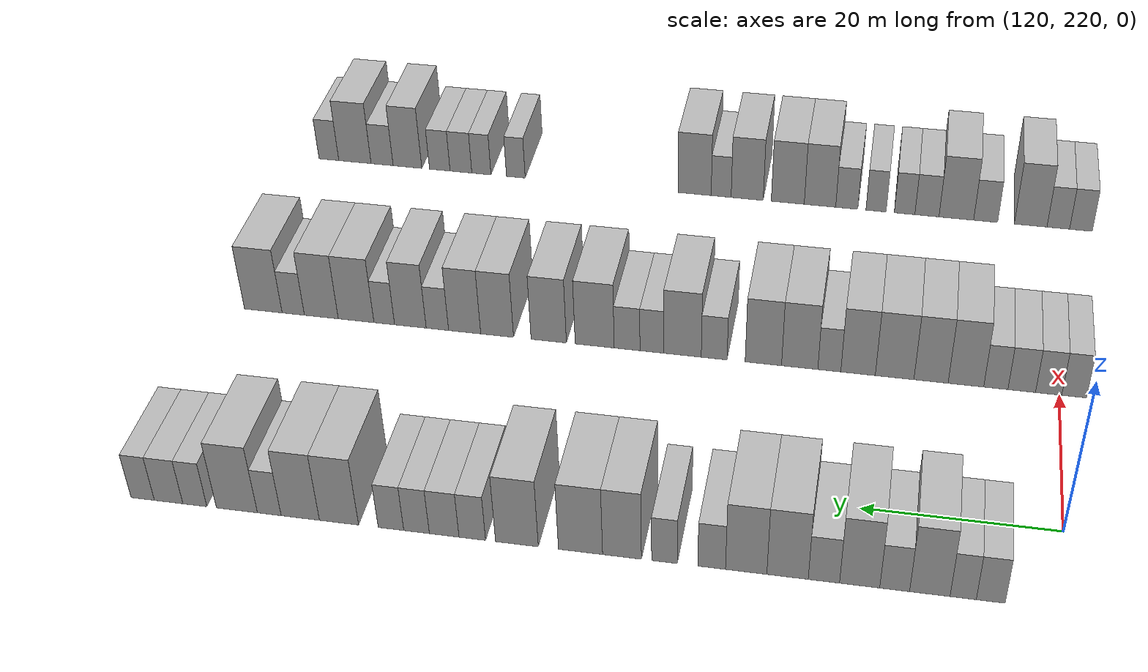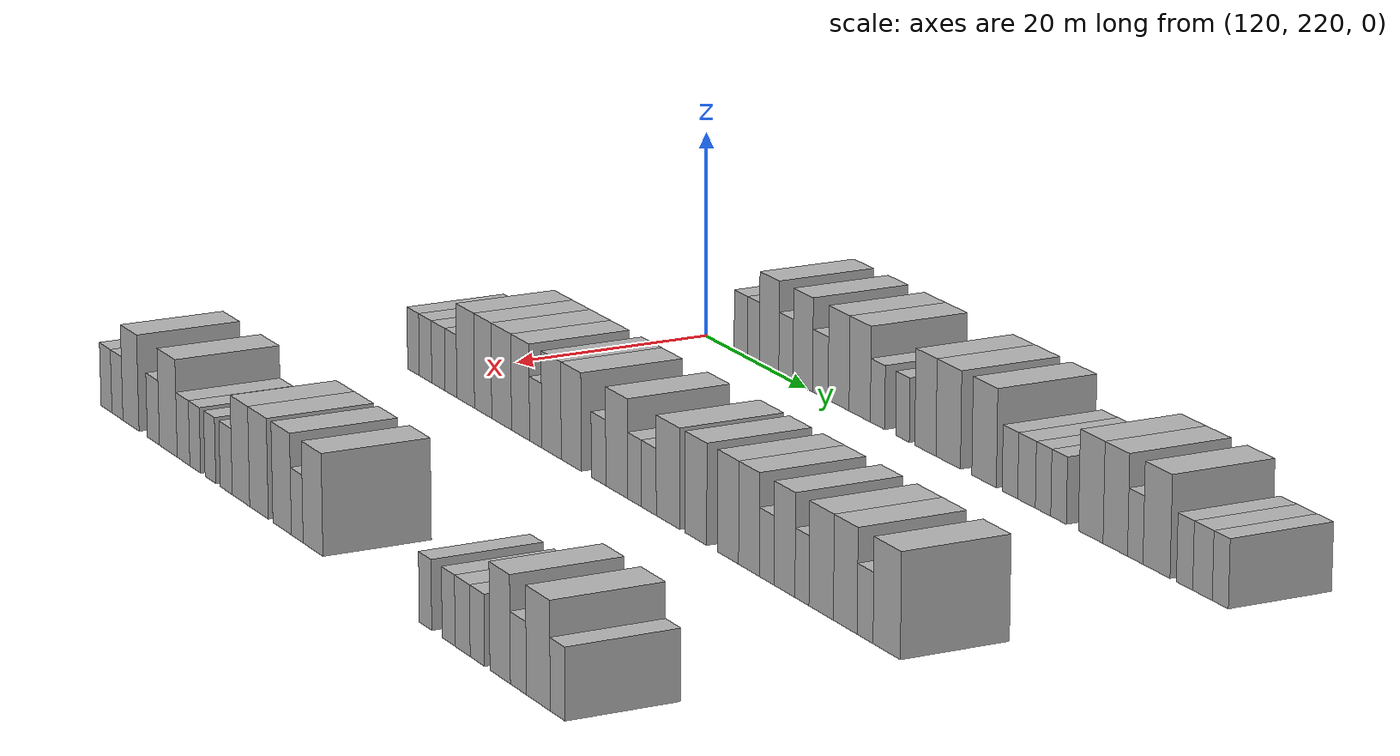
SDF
<sdf version="1.6">
 <world name="default">
  <model name="building_856">
   <static>1</static>
   <pose>115.0000 227.0291 0 0.000000 0.000000 0.000000</pose>
   <link name="link">
    <pose>0 0 3.00 0 0 0</pose>
    <collision name="collision"><geometry><box><size>10.0000 2.6956 6.0000</size></box></geometry></collision>
    <visual name="visual">
     <cast_shadows>0</cast_shadows>
     <geometry><box><size>10.0000 2.6956 6.0000</size></box></geometry>
     <material>
      <script>
       <uri>model://HANNAS_wall/materials/scripts</uri>
       <uri>model://HANNAS_wall/materials/textures</uri>
       <name>vrc/HANNAS_wall</name>
      </script>
     </material>
    </visual>
   </link>
  </model>
  <model name="building_857">
   <static>1</static>
   <pose>115.0000 229.6033 0 0.000000 0.000000 0.000000</pose>
   <link name="link">
    <pose>0 0 3.00 0 0 0</pose>
    <collision name="collision"><geometry><box><size>10.0000 2.4527 6.0000</size></box></geometry></collision>
    <visual name="visual">
     <cast_shadows>0</cast_shadows>
     <geometry><box><size>10.0000 2.4527 6.0000</size></box></geometry>
     <material>
      <script>
       <uri>model://HANNAS_wall/materials/scripts</uri>
       <uri>model://HANNAS_wall/materials/textures</uri>
       <name>vrc/HANNAS_wall</name>
      </script>
     </material>
    </visual>
   </link>
  </model>
  <model name="building_858">
   <static>1</static>
   <pose>115.0000 232.7340 0 0.000000 0.000000 0.000000</pose>
   <link name="link">
    <pose>0 0 4.50 0 0 0</pose>
    <collision name="collision"><geometry><box><size>10.0000 3.8087 9.0000</size></box></geometry></collision>
    <visual name="visual">
     <cast_shadows>0</cast_shadows>
     <geometry><box><size>10.0000 3.8087 9.0000</size></box></geometry>
     <material>
      <script>
       <uri>model://HANNAS_wall/materials/scripts</uri>
       <uri>model://HANNAS_wall/materials/textures</uri>
       <name>vrc/HANNAS_wall</name>
      </script>
     </material>
    </visual>
   </link>
  </model>
  <model name="building_859">
   <static>1</static>
   <pose>115.0000 236.0502 0 0.000000 0.000000 0.000000</pose>
   <link name="link">
    <pose>0 0 3.00 0 0 0</pose>
    <collision name="collision"><geometry><box><size>10.0000 2.8237 6.0000</size></box></geometry></collision>
    <visual name="visual">
     <cast_shadows>0</cast_shadows>
     <geometry><box><size>10.0000 2.8237 6.0000</size></box></geometry>
     <material>
      <script>
       <uri>model://HANNAS_wall/materials/scripts</uri>
       <uri>model://HANNAS_wall/materials/textures</uri>
       <name>vrc/HANNAS_wall</name>
      </script>
     </material>
    </visual>
   </link>
  </model>
  <model name="building_860">
   <static>1</static>
   <pose>115.0000 239.3705 0 0.000000 0.000000 0.000000</pose>
   <link name="link">
    <pose>0 0 4.50 0 0 0</pose>
    <collision name="collision"><geometry><box><size>10.0000 3.8169 9.0000</size></box></geometry></collision>
    <visual name="visual">
     <cast_shadows>0</cast_shadows>
     <geometry><box><size>10.0000 3.8169 9.0000</size></box></geometry>
     <material>
      <script>
       <uri>model://HANNAS_wall/materials/scripts</uri>
       <uri>model://HANNAS_wall/materials/textures</uri>
       <name>vrc/HANNAS_wall</name>
      </script>
     </material>
    </visual>
   </link>
  </model>
  <model name="building_861">
   <static>1</static>
   <pose>115.0000 242.7747 0 0.000000 0.000000 0.000000</pose>
   <link name="link">
    <pose>0 0 3.00 0 0 0</pose>
    <collision name="collision"><geometry><box><size>10.0000 2.9914 6.0000</size></box></geometry></collision>
    <visual name="visual">
     <cast_shadows>0</cast_shadows>
     <geometry><box><size>10.0000 2.9914 6.0000</size></box></geometry>
     <material>
      <script>
       <uri>model://HANNAS_wall/materials/scripts</uri>
       <uri>model://HANNAS_wall/materials/textures</uri>
       <name>vrc/HANNAS_wall</name>
      </script>
     </material>
    </visual>
   </link>
  </model>
  <model name="building_862">
   <static>1</static>
   <pose>115.0000 246.2562 0 0.000000 0.000000 0.000000</pose>
   <link name="link">
    <pose>0 0 4.50 0 0 0</pose>
    <collision name="collision"><geometry><box><size>10.0000 3.9718 9.0000</size></box></geometry></collision>
    <visual name="visual">
     <cast_shadows>0</cast_shadows>
     <geometry><box><size>10.0000 3.9718 9.0000</size></box></geometry>
     <material>
      <script>
       <uri>model://HANNAS_wall/materials/scripts</uri>
       <uri>model://HANNAS_wall/materials/textures</uri>
       <name>vrc/HANNAS_wall</name>
      </script>
     </material>
    </visual>
   </link>
  </model>
  <model name="building_863">
   <static>1</static>
   <pose>115.0000 250.2392 0 0.000000 0.000000 0.000000</pose>
   <link name="link">
    <pose>0 0 4.50 0 0 0</pose>
    <collision name="collision"><geometry><box><size>10.0000 3.9940 9.0000</size></box></geometry></collision>
    <visual name="visual">
     <cast_shadows>0</cast_shadows>
     <geometry><box><size>10.0000 3.9940 9.0000</size></box></geometry>
     <material>
      <script>
       <uri>model://HANNAS_wall/materials/scripts</uri>
       <uri>model://HANNAS_wall/materials/textures</uri>
       <name>vrc/HANNAS_wall</name>
      </script>
     </material>
    </visual>
   </link>
  </model>
  <model name="building_864">
   <static>1</static>
   <pose>115.0000 253.5771 0 0.000000 0.000000 0.000000</pose>
   <link name="link">
    <pose>0 0 3.00 0 0 0</pose>
    <collision name="collision"><geometry><box><size>10.0000 2.6818 6.0000</size></box></geometry></collision>
    <visual name="visual">
     <cast_shadows>0</cast_shadows>
     <geometry><box><size>10.0000 2.6818 6.0000</size></box></geometry>
     <material>
      <script>
       <uri>model://HANNAS_wall/materials/scripts</uri>
       <uri>model://HANNAS_wall/materials/textures</uri>
       <name>vrc/HANNAS_wall</name>
      </script>
     </material>
    </visual>
   </link>
  </model>
  <model name="building_865">
   <static>1</static>
   <pose>115.0000 258.1715 0 0.000000 0.000000 0.000000</pose>
   <link name="link">
    <pose>0 0 3.00 0 0 0</pose>
    <collision name="collision"><geometry><box><size>10.0000 2.5071 6.0000</size></box></geometry></collision>
    <visual name="visual">
     <cast_shadows>0</cast_shadows>
     <geometry><box><size>10.0000 2.5071 6.0000</size></box></geometry>
     <material>
      <script>
       <uri>model://HANNAS_wall/materials/scripts</uri>
       <uri>model://HANNAS_wall/materials/textures</uri>
       <name>vrc/HANNAS_wall</name>
      </script>
     </material>
    </visual>
   </link>
  </model>
  <model name="building_866">
   <static>1</static>
   <pose>115.0000 262.3333 0 0.000000 0.000000 0.000000</pose>
   <link name="link">
    <pose>0 0 4.50 0 0 0</pose>
    <collision name="collision"><geometry><box><size>10.0000 3.8165 9.0000</size></box></geometry></collision>
    <visual name="visual">
     <cast_shadows>0</cast_shadows>
     <geometry><box><size>10.0000 3.8165 9.0000</size></box></geometry>
     <material>
      <script>
       <uri>model://HANNAS_wall/materials/scripts</uri>
       <uri>model://HANNAS_wall/materials/textures</uri>
       <name>vrc/HANNAS_wall</name>
      </script>
     </material>
    </visual>
   </link>
  </model>
  <model name="building_867">
   <static>1</static>
   <pose>115.0000 266.4249 0 0.000000 0.000000 0.000000</pose>
   <link name="link">
    <pose>0 0 4.50 0 0 0</pose>
    <collision name="collision"><geometry><box><size>10.0000 4.3666 9.0000</size></box></geometry></collision>
    <visual name="visual">
     <cast_shadows>0</cast_shadows>
     <geometry><box><size>10.0000 4.3666 9.0000</size></box></geometry>
     <material>
      <script>
       <uri>model://HANNAS_wall/materials/scripts</uri>
       <uri>model://HANNAS_wall/materials/textures</uri>
       <name>vrc/HANNAS_wall</name>
      </script>
     </material>
    </visual>
   </link>
  </model>
  <model name="building_868">
   <static>1</static>
   <pose>115.0000 272.7425 0 0.000000 0.000000 0.000000</pose>
   <link name="link">
    <pose>0 0 4.50 0 0 0</pose>
    <collision name="collision"><geometry><box><size>10.0000 4.2687 9.0000</size></box></geometry></collision>
    <visual name="visual">
     <cast_shadows>0</cast_shadows>
     <geometry><box><size>10.0000 4.2687 9.0000</size></box></geometry>
     <material>
      <script>
       <uri>model://HANNAS_wall/materials/scripts</uri>
       <uri>model://HANNAS_wall/materials/textures</uri>
       <name>vrc/HANNAS_wall</name>
      </script>
     </material>
    </visual>
   </link>
  </model>
  <model name="building_869">
   <static>1</static>
   <pose>115.0000 277.2118 0 0.000000 0.000000 0.000000</pose>
   <link name="link">
    <pose>0 0 3.00 0 0 0</pose>
    <collision name="collision"><geometry><box><size>10.0000 2.6699 6.0000</size></box></geometry></collision>
    <visual name="visual">
     <cast_shadows>0</cast_shadows>
     <geometry><box><size>10.0000 2.6699 6.0000</size></box></geometry>
     <material>
      <script>
       <uri>model://HANNAS_wall/materials/scripts</uri>
       <uri>model://HANNAS_wall/materials/textures</uri>
       <name>vrc/HANNAS_wall</name>
      </script>
     </material>
    </visual>
   </link>
  </model>
  <model name="building_870">
   <static>1</static>
   <pose>115.0000 280.0429 0 0.000000 0.000000 0.000000</pose>
   <link name="link">
    <pose>0 0 3.00 0 0 0</pose>
    <collision name="collision"><geometry><box><size>10.0000 2.9924 6.0000</size></box></geometry></collision>
    <visual name="visual">
     <cast_shadows>0</cast_shadows>
     <geometry><box><size>10.0000 2.9924 6.0000</size></box></geometry>
     <material>
      <script>
       <uri>model://HANNAS_wall/materials/scripts</uri>
       <uri>model://HANNAS_wall/materials/textures</uri>
       <name>vrc/HANNAS_wall</name>
      </script>
     </material>
    </visual>
   </link>
  </model>
  <model name="building_871">
   <static>1</static>
   <pose>115.0000 282.8350 0 0.000000 0.000000 0.000000</pose>
   <link name="link">
    <pose>0 0 3.00 0 0 0</pose>
    <collision name="collision"><geometry><box><size>10.0000 2.5917 6.0000</size></box></geometry></collision>
    <visual name="visual">
     <cast_shadows>0</cast_shadows>
     <geometry><box><size>10.0000 2.5917 6.0000</size></box></geometry>
     <material>
      <script>
       <uri>model://HANNAS_wall/materials/scripts</uri>
       <uri>model://HANNAS_wall/materials/textures</uri>
       <name>vrc/HANNAS_wall</name>
      </script>
     </material>
    </visual>
   </link>
  </model>
  <model name="building_872">
   <static>1</static>
   <pose>115.0000 285.4289 0 0.000000 0.000000 0.000000</pose>
   <link name="link">
    <pose>0 0 3.00 0 0 0</pose>
    <collision name="collision"><geometry><box><size>10.0000 2.5960 6.0000</size></box></geometry></collision>
    <visual name="visual">
     <cast_shadows>0</cast_shadows>
     <geometry><box><size>10.0000 2.5960 6.0000</size></box></geometry>
     <material>
      <script>
       <uri>model://HANNAS_wall/materials/scripts</uri>
       <uri>model://HANNAS_wall/materials/textures</uri>
       <name>vrc/HANNAS_wall</name>
      </script>
     </material>
    </visual>
   </link>
  </model>
  <model name="building_873">
   <static>1</static>
   <pose>115.0000 290.7382 0 0.000000 0.000000 0.000000</pose>
   <link name="link">
    <pose>0 0 4.50 0 0 0</pose>
    <collision name="collision"><geometry><box><size>10.0000 4.0227 9.0000</size></box></geometry></collision>
    <visual name="visual">
     <cast_shadows>0</cast_shadows>
     <geometry><box><size>10.0000 4.0227 9.0000</size></box></geometry>
     <material>
      <script>
       <uri>model://HANNAS_wall/materials/scripts</uri>
       <uri>model://HANNAS_wall/materials/textures</uri>
       <name>vrc/HANNAS_wall</name>
      </script>
     </material>
    </visual>
   </link>
  </model>
  <model name="building_874">
   <static>1</static>
   <pose>115.0000 294.7221 0 0.000000 0.000000 0.000000</pose>
   <link name="link">
    <pose>0 0 4.50 0 0 0</pose>
    <collision name="collision"><geometry><box><size>10.0000 3.9450 9.0000</size></box></geometry></collision>
    <visual name="visual">
     <cast_shadows>0</cast_shadows>
     <geometry><box><size>10.0000 3.9450 9.0000</size></box></geometry>
     <material>
      <script>
       <uri>model://HANNAS_wall/materials/scripts</uri>
       <uri>model://HANNAS_wall/materials/textures</uri>
       <name>vrc/HANNAS_wall</name>
      </script>
     </material>
    </visual>
   </link>
  </model>
  <model name="building_875">
   <static>1</static>
   <pose>115.0000 297.9232 0 0.000000 0.000000 0.000000</pose>
   <link name="link">
    <pose>0 0 3.00 0 0 0</pose>
    <collision name="collision"><geometry><box><size>10.0000 2.4573 6.0000</size></box></geometry></collision>
    <visual name="visual">
     <cast_shadows>0</cast_shadows>
     <geometry><box><size>10.0000 2.4573 6.0000</size></box></geometry>
     <material>
      <script>
       <uri>model://HANNAS_wall/materials/scripts</uri>
       <uri>model://HANNAS_wall/materials/textures</uri>
       <name>vrc/HANNAS_wall</name>
      </script>
     </material>
    </visual>
   </link>
  </model>
  <model name="building_876">
   <static>1</static>
   <pose>115.0000 301.2846 0 0.000000 0.000000 0.000000</pose>
   <link name="link">
    <pose>0 0 4.50 0 0 0</pose>
    <collision name="collision"><geometry><box><size>10.0000 4.2655 9.0000</size></box></geometry></collision>
    <visual name="visual">
     <cast_shadows>0</cast_shadows>
     <geometry><box><size>10.0000 4.2655 9.0000</size></box></geometry>
     <material>
      <script>
       <uri>model://HANNAS_wall/materials/scripts</uri>
       <uri>model://HANNAS_wall/materials/textures</uri>
       <name>vrc/HANNAS_wall</name>
      </script>
     </material>
    </visual>
   </link>
  </model>
  <model name="building_877">
   <static>1</static>
   <pose>115.0000 305.6747 0 0.000000 0.000000 0.000000</pose>
   <link name="link">
    <pose>0 0 3.00 0 0 0</pose>
    <collision name="collision"><geometry><box><size>10.0000 2.5145 6.0000</size></box></geometry></collision>
    <visual name="visual">
     <cast_shadows>0</cast_shadows>
     <geometry><box><size>10.0000 2.5145 6.0000</size></box></geometry>
     <material>
      <script>
       <uri>model://HANNAS_wall/materials/scripts</uri>
       <uri>model://HANNAS_wall/materials/textures</uri>
       <name>vrc/HANNAS_wall</name>
      </script>
     </material>
    </visual>
   </link>
  </model>
  <model name="building_878">
   <static>1</static>
   <pose>115.0000 308.4294 0 0.000000 0.000000 0.000000</pose>
   <link name="link">
    <pose>0 0 3.00 0 0 0</pose>
    <collision name="collision"><geometry><box><size>10.0000 2.9950 6.0000</size></box></geometry></collision>
    <visual name="visual">
     <cast_shadows>0</cast_shadows>
     <geometry><box><size>10.0000 2.9950 6.0000</size></box></geometry>
     <material>
      <script>
       <uri>model://HANNAS_wall/materials/scripts</uri>
       <uri>model://HANNAS_wall/materials/textures</uri>
       <name>vrc/HANNAS_wall</name>
      </script>
     </material>
    </visual>
   </link>
  </model>
  <model name="building_879">
   <static>1</static>
   <pose>115.0000 311.1536 0 0.000000 0.000000 0.000000</pose>
   <link name="link">
    <pose>0 0 3.00 0 0 0</pose>
    <collision name="collision"><geometry><box><size>10.0000 2.4533 6.0000</size></box></geometry></collision>
    <visual name="visual">
     <cast_shadows>0</cast_shadows>
     <geometry><box><size>10.0000 2.4533 6.0000</size></box></geometry>
     <material>
      <script>
       <uri>model://HANNAS_wall/materials/scripts</uri>
       <uri>model://HANNAS_wall/materials/textures</uri>
       <name>vrc/HANNAS_wall</name>
      </script>
     </material>
    </visual>
   </link>
  </model>
  <model name="building_1085">
   <static>1</static>
   <pose>145.0000 218.4726 0 0.000000 0.000000 0.000000</pose>
   <link name="link">
    <pose>0 0 3.00 0 0 0</pose>
    <collision name="collision"><geometry><box><size>10.0000 2.6094 6.0000</size></box></geometry></collision>
    <visual name="visual">
     <cast_shadows>0</cast_shadows>
     <geometry><box><size>10.0000 2.6094 6.0000</size></box></geometry>
     <material>
      <script>
       <uri>model://HANNAS_wall/materials/scripts</uri>
       <uri>model://HANNAS_wall/materials/textures</uri>
       <name>vrc/HANNAS_wall</name>
      </script>
     </material>
    </visual>
   </link>
  </model>
  <model name="building_1086">
   <static>1</static>
   <pose>145.0000 221.1645 0 0.000000 0.000000 0.000000</pose>
   <link name="link">
    <pose>0 0 3.00 0 0 0</pose>
    <collision name="collision"><geometry><box><size>10.0000 2.7745 6.0000</size></box></geometry></collision>
    <visual name="visual">
     <cast_shadows>0</cast_shadows>
     <geometry><box><size>10.0000 2.7745 6.0000</size></box></geometry>
     <material>
      <script>
       <uri>model://HANNAS_wall/materials/scripts</uri>
       <uri>model://HANNAS_wall/materials/textures</uri>
       <name>vrc/HANNAS_wall</name>
      </script>
     </material>
    </visual>
   </link>
  </model>
  <model name="building_1087">
   <static>1</static>
   <pose>145.0000 224.0171 0 0.000000 0.000000 0.000000</pose>
   <link name="link">
    <pose>0 0 3.00 0 0 0</pose>
    <collision name="collision"><geometry><box><size>10.0000 2.9308 6.0000</size></box></geometry></collision>
    <visual name="visual">
     <cast_shadows>0</cast_shadows>
     <geometry><box><size>10.0000 2.9308 6.0000</size></box></geometry>
     <material>
      <script>
       <uri>model://HANNAS_wall/materials/scripts</uri>
       <uri>model://HANNAS_wall/materials/textures</uri>
       <name>vrc/HANNAS_wall</name>
      </script>
     </material>
    </visual>
   </link>
  </model>
  <model name="building_1088">
   <static>1</static>
   <pose>145.0000 226.7716 0 0.000000 0.000000 0.000000</pose>
   <link name="link">
    <pose>0 0 3.00 0 0 0</pose>
    <collision name="collision"><geometry><box><size>10.0000 2.5783 6.0000</size></box></geometry></collision>
    <visual name="visual">
     <cast_shadows>0</cast_shadows>
     <geometry><box><size>10.0000 2.5783 6.0000</size></box></geometry>
     <material>
      <script>
       <uri>model://HANNAS_wall/materials/scripts</uri>
       <uri>model://HANNAS_wall/materials/textures</uri>
       <name>vrc/HANNAS_wall</name>
      </script>
     </material>
    </visual>
   </link>
  </model>
  <model name="building_1089">
   <static>1</static>
   <pose>145.0000 229.9659 0 0.000000 0.000000 0.000000</pose>
   <link name="link">
    <pose>0 0 4.50 0 0 0</pose>
    <collision name="collision"><geometry><box><size>10.0000 3.8103 9.0000</size></box></geometry></collision>
    <visual name="visual">
     <cast_shadows>0</cast_shadows>
     <geometry><box><size>10.0000 3.8103 9.0000</size></box></geometry>
     <material>
      <script>
       <uri>model://HANNAS_wall/materials/scripts</uri>
       <uri>model://HANNAS_wall/materials/textures</uri>
       <name>vrc/HANNAS_wall</name>
      </script>
     </material>
    </visual>
   </link>
  </model>
  <model name="building_1090">
   <static>1</static>
   <pose>145.0000 233.7099 0 0.000000 0.000000 0.000000</pose>
   <link name="link">
    <pose>0 0 4.50 0 0 0</pose>
    <collision name="collision"><geometry><box><size>10.0000 3.6778 9.0000</size></box></geometry></collision>
    <visual name="visual">
     <cast_shadows>0</cast_shadows>
     <geometry><box><size>10.0000 3.6778 9.0000</size></box></geometry>
     <material>
      <script>
       <uri>model://HANNAS_wall/materials/scripts</uri>
       <uri>model://HANNAS_wall/materials/textures</uri>
       <name>vrc/HANNAS_wall</name>
      </script>
     </material>
    </visual>
   </link>
  </model>
  <model name="building_1091">
   <static>1</static>
   <pose>145.0000 237.6364 0 0.000000 0.000000 0.000000</pose>
   <link name="link">
    <pose>0 0 4.50 0 0 0</pose>
    <collision name="collision"><geometry><box><size>10.0000 4.1751 9.0000</size></box></geometry></collision>
    <visual name="visual">
     <cast_shadows>0</cast_shadows>
     <geometry><box><size>10.0000 4.1751 9.0000</size></box></geometry>
     <material>
      <script>
       <uri>model://HANNAS_wall/materials/scripts</uri>
       <uri>model://HANNAS_wall/materials/textures</uri>
       <name>vrc/HANNAS_wall</name>
      </script>
     </material>
    </visual>
   </link>
  </model>
  <model name="building_1092">
   <static>1</static>
   <pose>145.0000 241.5987 0 0.000000 0.000000 0.000000</pose>
   <link name="link">
    <pose>0 0 4.50 0 0 0</pose>
    <collision name="collision"><geometry><box><size>10.0000 3.7496 9.0000</size></box></geometry></collision>
    <visual name="visual">
     <cast_shadows>0</cast_shadows>
     <geometry><box><size>10.0000 3.7496 9.0000</size></box></geometry>
     <material>
      <script>
       <uri>model://HANNAS_wall/materials/scripts</uri>
       <uri>model://HANNAS_wall/materials/textures</uri>
       <name>vrc/HANNAS_wall</name>
      </script>
     </material>
    </visual>
   </link>
  </model>
  <model name="building_1093">
   <static>1</static>
   <pose>145.0000 244.7270 0 0.000000 0.000000 0.000000</pose>
   <link name="link">
    <pose>0 0 3.00 0 0 0</pose>
    <collision name="collision"><geometry><box><size>10.0000 2.5070 6.0000</size></box></geometry></collision>
    <visual name="visual">
     <cast_shadows>0</cast_shadows>
     <geometry><box><size>10.0000 2.5070 6.0000</size></box></geometry>
     <material>
      <script>
       <uri>model://HANNAS_wall/materials/scripts</uri>
       <uri>model://HANNAS_wall/materials/textures</uri>
       <name>vrc/HANNAS_wall</name>
      </script>
     </material>
    </visual>
   </link>
  </model>
  <model name="building_1094">
   <static>1</static>
   <pose>145.0000 247.9673 0 0.000000 0.000000 0.000000</pose>
   <link name="link">
    <pose>0 0 4.50 0 0 0</pose>
    <collision name="collision"><geometry><box><size>10.0000 3.9736 9.0000</size></box></geometry></collision>
    <visual name="visual">
     <cast_shadows>0</cast_shadows>
     <geometry><box><size>10.0000 3.9736 9.0000</size></box></geometry>
     <material>
      <script>
       <uri>model://HANNAS_wall/materials/scripts</uri>
       <uri>model://HANNAS_wall/materials/textures</uri>
       <name>vrc/HANNAS_wall</name>
      </script>
     </material>
    </visual>
   </link>
  </model>
  <model name="building_1095">
   <static>1</static>
   <pose>145.0000 251.9594 0 0.000000 0.000000 0.000000</pose>
   <link name="link">
    <pose>0 0 4.50 0 0 0</pose>
    <collision name="collision"><geometry><box><size>10.0000 4.0106 9.0000</size></box></geometry></collision>
    <visual name="visual">
     <cast_shadows>0</cast_shadows>
     <geometry><box><size>10.0000 4.0106 9.0000</size></box></geometry>
     <material>
      <script>
       <uri>model://HANNAS_wall/materials/scripts</uri>
       <uri>model://HANNAS_wall/materials/textures</uri>
       <name>vrc/HANNAS_wall</name>
      </script>
     </material>
    </visual>
   </link>
  </model>
  <model name="building_1096">
   <static>1</static>
   <pose>145.0000 257.3960 0 0.000000 0.000000 0.000000</pose>
   <link name="link">
    <pose>0 0 3.00 0 0 0</pose>
    <collision name="collision"><geometry><box><size>10.0000 2.8628 6.0000</size></box></geometry></collision>
    <visual name="visual">
     <cast_shadows>0</cast_shadows>
     <geometry><box><size>10.0000 2.8628 6.0000</size></box></geometry>
     <material>
      <script>
       <uri>model://HANNAS_wall/materials/scripts</uri>
       <uri>model://HANNAS_wall/materials/textures</uri>
       <name>vrc/HANNAS_wall</name>
      </script>
     </material>
    </visual>
   </link>
  </model>
  <model name="building_1097">
   <static>1</static>
   <pose>145.0000 260.9255 0 0.000000 0.000000 0.000000</pose>
   <link name="link">
    <pose>0 0 4.50 0 0 0</pose>
    <collision name="collision"><geometry><box><size>10.0000 4.1962 9.0000</size></box></geometry></collision>
    <visual name="visual">
     <cast_shadows>0</cast_shadows>
     <geometry><box><size>10.0000 4.1962 9.0000</size></box></geometry>
     <material>
      <script>
       <uri>model://HANNAS_wall/materials/scripts</uri>
       <uri>model://HANNAS_wall/materials/textures</uri>
       <name>vrc/HANNAS_wall</name>
      </script>
     </material>
    </visual>
   </link>
  </model>
  <model name="building_1098">
   <static>1</static>
   <pose>145.0000 264.3428 0 0.000000 0.000000 0.000000</pose>
   <link name="link">
    <pose>0 0 3.00 0 0 0</pose>
    <collision name="collision"><geometry><box><size>10.0000 2.6382 6.0000</size></box></geometry></collision>
    <visual name="visual">
     <cast_shadows>0</cast_shadows>
     <geometry><box><size>10.0000 2.6382 6.0000</size></box></geometry>
     <material>
      <script>
       <uri>model://HANNAS_wall/materials/scripts</uri>
       <uri>model://HANNAS_wall/materials/textures</uri>
       <name>vrc/HANNAS_wall</name>
      </script>
     </material>
    </visual>
   </link>
  </model>
  <model name="building_1099">
   <static>1</static>
   <pose>145.0000 267.1093 0 0.000000 0.000000 0.000000</pose>
   <link name="link">
    <pose>0 0 3.00 0 0 0</pose>
    <collision name="collision"><geometry><box><size>10.0000 2.8949 6.0000</size></box></geometry></collision>
    <visual name="visual">
     <cast_shadows>0</cast_shadows>
     <geometry><box><size>10.0000 2.8949 6.0000</size></box></geometry>
     <material>
      <script>
       <uri>model://HANNAS_wall/materials/scripts</uri>
       <uri>model://HANNAS_wall/materials/textures</uri>
       <name>vrc/HANNAS_wall</name>
      </script>
     </material>
    </visual>
   </link>
  </model>
  <model name="building_1100">
   <static>1</static>
   <pose>145.0000 270.7602 0 0.000000 0.000000 0.000000</pose>
   <link name="link">
    <pose>0 0 4.50 0 0 0</pose>
    <collision name="collision"><geometry><box><size>10.0000 4.4069 9.0000</size></box></geometry></collision>
    <visual name="visual">
     <cast_shadows>0</cast_shadows>
     <geometry><box><size>10.0000 4.4069 9.0000</size></box></geometry>
     <material>
      <script>
       <uri>model://HANNAS_wall/materials/scripts</uri>
       <uri>model://HANNAS_wall/materials/textures</uri>
       <name>vrc/HANNAS_wall</name>
      </script>
     </material>
    </visual>
   </link>
  </model>
  <model name="building_1101">
   <static>1</static>
   <pose>145.0000 275.9686 0 0.000000 0.000000 0.000000</pose>
   <link name="link">
    <pose>0 0 4.50 0 0 0</pose>
    <collision name="collision"><geometry><box><size>10.0000 4.0098 9.0000</size></box></geometry></collision>
    <visual name="visual">
     <cast_shadows>0</cast_shadows>
     <geometry><box><size>10.0000 4.0098 9.0000</size></box></geometry>
     <material>
      <script>
       <uri>model://HANNAS_wall/materials/scripts</uri>
       <uri>model://HANNAS_wall/materials/textures</uri>
       <name>vrc/HANNAS_wall</name>
      </script>
     </material>
    </visual>
   </link>
  </model>
  <model name="building_1102">
   <static>1</static>
   <pose>145.0000 281.8555 0 0.000000 0.000000 0.000000</pose>
   <link name="link">
    <pose>0 0 4.50 0 0 0</pose>
    <collision name="collision"><geometry><box><size>10.0000 3.7640 9.0000</size></box></geometry></collision>
    <visual name="visual">
     <cast_shadows>0</cast_shadows>
     <geometry><box><size>10.0000 3.7640 9.0000</size></box></geometry>
     <material>
      <script>
       <uri>model://HANNAS_wall/materials/scripts</uri>
       <uri>model://HANNAS_wall/materials/textures</uri>
       <name>vrc/HANNAS_wall</name>
      </script>
     </material>
    </visual>
   </link>
  </model>
  <model name="building_1103">
   <static>1</static>
   <pose>145.0000 285.5832 0 0.000000 0.000000 0.000000</pose>
   <link name="link">
    <pose>0 0 4.50 0 0 0</pose>
    <collision name="collision"><geometry><box><size>10.0000 3.6913 9.0000</size></box></geometry></collision>
    <visual name="visual">
     <cast_shadows>0</cast_shadows>
     <geometry><box><size>10.0000 3.6913 9.0000</size></box></geometry>
     <material>
      <script>
       <uri>model://HANNAS_wall/materials/scripts</uri>
       <uri>model://HANNAS_wall/materials/textures</uri>
       <name>vrc/HANNAS_wall</name>
      </script>
     </material>
    </visual>
   </link>
  </model>
  <model name="building_1104">
   <static>1</static>
   <pose>145.0000 288.7249 0 0.000000 0.000000 0.000000</pose>
   <link name="link">
    <pose>0 0 3.00 0 0 0</pose>
    <collision name="collision"><geometry><box><size>10.0000 2.5921 6.0000</size></box></geometry></collision>
    <visual name="visual">
     <cast_shadows>0</cast_shadows>
     <geometry><box><size>10.0000 2.5921 6.0000</size></box></geometry>
     <material>
      <script>
       <uri>model://HANNAS_wall/materials/scripts</uri>
       <uri>model://HANNAS_wall/materials/textures</uri>
       <name>vrc/HANNAS_wall</name>
      </script>
     </material>
    </visual>
   </link>
  </model>
  <model name="building_1105">
   <static>1</static>
   <pose>145.0000 291.8538 0 0.000000 0.000000 0.000000</pose>
   <link name="link">
    <pose>0 0 4.50 0 0 0</pose>
    <collision name="collision"><geometry><box><size>10.0000 3.6657 9.0000</size></box></geometry></collision>
    <visual name="visual">
     <cast_shadows>0</cast_shadows>
     <geometry><box><size>10.0000 3.6657 9.0000</size></box></geometry>
     <material>
      <script>
       <uri>model://HANNAS_wall/materials/scripts</uri>
       <uri>model://HANNAS_wall/materials/textures</uri>
       <name>vrc/HANNAS_wall</name>
      </script>
     </material>
    </visual>
   </link>
  </model>
  <model name="building_1106">
   <static>1</static>
   <pose>145.0000 294.8871 0 0.000000 0.000000 0.000000</pose>
   <link name="link">
    <pose>0 0 3.00 0 0 0</pose>
    <collision name="collision"><geometry><box><size>10.0000 2.4009 6.0000</size></box></geometry></collision>
    <visual name="visual">
     <cast_shadows>0</cast_shadows>
     <geometry><box><size>10.0000 2.4009 6.0000</size></box></geometry>
     <material>
      <script>
       <uri>model://HANNAS_wall/materials/scripts</uri>
       <uri>model://HANNAS_wall/materials/textures</uri>
       <name>vrc/HANNAS_wall</name>
      </script>
     </material>
    </visual>
   </link>
  </model>
  <model name="building_1107">
   <static>1</static>
   <pose>145.0000 298.1744 0 0.000000 0.000000 0.000000</pose>
   <link name="link">
    <pose>0 0 4.50 0 0 0</pose>
    <collision name="collision"><geometry><box><size>10.0000 4.1737 9.0000</size></box></geometry></collision>
    <visual name="visual">
     <cast_shadows>0</cast_shadows>
     <geometry><box><size>10.0000 4.1737 9.0000</size></box></geometry>
     <material>
      <script>
       <uri>model://HANNAS_wall/materials/scripts</uri>
       <uri>model://HANNAS_wall/materials/textures</uri>
       <name>vrc/HANNAS_wall</name>
      </script>
     </material>
    </visual>
   </link>
  </model>
  <model name="building_1108">
   <static>1</static>
   <pose>145.0000 302.2503 0 0.000000 0.000000 0.000000</pose>
   <link name="link">
    <pose>0 0 4.50 0 0 0</pose>
    <collision name="collision"><geometry><box><size>10.0000 3.9782 9.0000</size></box></geometry></collision>
    <visual name="visual">
     <cast_shadows>0</cast_shadows>
     <geometry><box><size>10.0000 3.9782 9.0000</size></box></geometry>
     <material>
      <script>
       <uri>model://HANNAS_wall/materials/scripts</uri>
       <uri>model://HANNAS_wall/materials/textures</uri>
       <name>vrc/HANNAS_wall</name>
      </script>
     </material>
    </visual>
   </link>
  </model>
  <model name="building_1109">
   <static>1</static>
   <pose>145.0000 305.5549 0 0.000000 0.000000 0.000000</pose>
   <link name="link">
    <pose>0 0 3.00 0 0 0</pose>
    <collision name="collision"><geometry><box><size>10.0000 2.6310 6.0000</size></box></geometry></collision>
    <visual name="visual">
     <cast_shadows>0</cast_shadows>
     <geometry><box><size>10.0000 2.6310 6.0000</size></box></geometry>
     <material>
      <script>
       <uri>model://HANNAS_wall/materials/scripts</uri>
       <uri>model://HANNAS_wall/materials/textures</uri>
       <name>vrc/HANNAS_wall</name>
      </script>
     </material>
    </visual>
   </link>
  </model>
  <model name="building_1110">
   <static>1</static>
   <pose>145.0000 309.0977 0 0.000000 0.000000 0.000000</pose>
   <link name="link">
    <pose>0 0 4.50 0 0 0</pose>
    <collision name="collision"><geometry><box><size>10.0000 4.4546 9.0000</size></box></geometry></collision>
    <visual name="visual">
     <cast_shadows>0</cast_shadows>
     <geometry><box><size>10.0000 4.4546 9.0000</size></box></geometry>
     <material>
      <script>
       <uri>model://HANNAS_wall/materials/scripts</uri>
       <uri>model://HANNAS_wall/materials/textures</uri>
       <name>vrc/HANNAS_wall</name>
      </script>
     </material>
    </visual>
   </link>
  </model>
  <model name="building_1323">
   <static>1</static>
   <pose>175.0000 216.8391 0 0.000000 0.000000 0.000000</pose>
   <link name="link">
    <pose>0 0 3.00 0 0 0</pose>
    <collision name="collision"><geometry><box><size>10.0000 2.6857 6.0000</size></box></geometry></collision>
    <visual name="visual">
     <cast_shadows>0</cast_shadows>
     <geometry><box><size>10.0000 2.6857 6.0000</size></box></geometry>
     <material>
      <script>
       <uri>model://HANNAS_wall/materials/scripts</uri>
       <uri>model://HANNAS_wall/materials/textures</uri>
       <name>vrc/HANNAS_wall</name>
      </script>
     </material>
    </visual>
   </link>
  </model>
  <model name="building_1324">
   <static>1</static>
   <pose>175.0000 219.5246 0 0.000000 0.000000 0.000000</pose>
   <link name="link">
    <pose>0 0 3.00 0 0 0</pose>
    <collision name="collision"><geometry><box><size>10.0000 2.6853 6.0000</size></box></geometry></collision>
    <visual name="visual">
     <cast_shadows>0</cast_shadows>
     <geometry><box><size>10.0000 2.6853 6.0000</size></box></geometry>
     <material>
      <script>
       <uri>model://HANNAS_wall/materials/scripts</uri>
       <uri>model://HANNAS_wall/materials/textures</uri>
       <name>vrc/HANNAS_wall</name>
      </script>
     </material>
    </visual>
   </link>
  </model>
  <model name="building_1325">
   <static>1</static>
   <pose>175.0000 222.8182 0 0.000000 0.000000 0.000000</pose>
   <link name="link">
    <pose>0 0 4.50 0 0 0</pose>
    <collision name="collision"><geometry><box><size>10.0000 3.9020 9.0000</size></box></geometry></collision>
    <visual name="visual">
     <cast_shadows>0</cast_shadows>
     <geometry><box><size>10.0000 3.9020 9.0000</size></box></geometry>
     <material>
      <script>
       <uri>model://HANNAS_wall/materials/scripts</uri>
       <uri>model://HANNAS_wall/materials/textures</uri>
       <name>vrc/HANNAS_wall</name>
      </script>
     </material>
    </visual>
   </link>
  </model>
  <model name="building_1326">
   <static>1</static>
   <pose>175.0000 228.2085 0 0.000000 0.000000 0.000000</pose>
   <link name="link">
    <pose>0 0 3.00 0 0 0</pose>
    <collision name="collision"><geometry><box><size>10.0000 2.8786 6.0000</size></box></geometry></collision>
    <visual name="visual">
     <cast_shadows>0</cast_shadows>
     <geometry><box><size>10.0000 2.8786 6.0000</size></box></geometry>
     <material>
      <script>
       <uri>model://HANNAS_wall/materials/scripts</uri>
       <uri>model://HANNAS_wall/materials/textures</uri>
       <name>vrc/HANNAS_wall</name>
      </script>
     </material>
    </visual>
   </link>
  </model>
  <model name="building_1327">
   <static>1</static>
   <pose>175.0000 231.7402 0 0.000000 0.000000 0.000000</pose>
   <link name="link">
    <pose>0 0 4.50 0 0 0</pose>
    <collision name="collision"><geometry><box><size>10.0000 4.1847 9.0000</size></box></geometry></collision>
    <visual name="visual">
     <cast_shadows>0</cast_shadows>
     <geometry><box><size>10.0000 4.1847 9.0000</size></box></geometry>
     <material>
      <script>
       <uri>model://HANNAS_wall/materials/scripts</uri>
       <uri>model://HANNAS_wall/materials/textures</uri>
       <name>vrc/HANNAS_wall</name>
      </script>
     </material>
    </visual>
   </link>
  </model>
  <model name="building_1328">
   <static>1</static>
   <pose>175.0000 235.2921 0 0.000000 0.000000 0.000000</pose>
   <link name="link">
    <pose>0 0 3.00 0 0 0</pose>
    <collision name="collision"><geometry><box><size>10.0000 2.9191 6.0000</size></box></geometry></collision>
    <visual name="visual">
     <cast_shadows>0</cast_shadows>
     <geometry><box><size>10.0000 2.9191 6.0000</size></box></geometry>
     <material>
      <script>
       <uri>model://HANNAS_wall/materials/scripts</uri>
       <uri>model://HANNAS_wall/materials/textures</uri>
       <name>vrc/HANNAS_wall</name>
      </script>
     </material>
    </visual>
   </link>
  </model>
  <model name="building_1329">
   <static>1</static>
   <pose>175.0000 237.9984 0 0.000000 0.000000 0.000000</pose>
   <link name="link">
    <pose>0 0 3.00 0 0 0</pose>
    <collision name="collision"><geometry><box><size>10.0000 2.4936 6.0000</size></box></geometry></collision>
    <visual name="visual">
     <cast_shadows>0</cast_shadows>
     <geometry><box><size>10.0000 2.4936 6.0000</size></box></geometry>
     <material>
      <script>
       <uri>model://HANNAS_wall/materials/scripts</uri>
       <uri>model://HANNAS_wall/materials/textures</uri>
       <name>vrc/HANNAS_wall</name>
      </script>
     </material>
    </visual>
   </link>
  </model>
  <model name="building_1330">
   <static>1</static>
   <pose>175.0000 241.4725 0 0.000000 0.000000 0.000000</pose>
   <link name="link">
    <pose>0 0 3.00 0 0 0</pose>
    <collision name="collision"><geometry><box><size>10.0000 2.4546 6.0000</size></box></geometry></collision>
    <visual name="visual">
     <cast_shadows>0</cast_shadows>
     <geometry><box><size>10.0000 2.4546 6.0000</size></box></geometry>
     <material>
      <script>
       <uri>model://HANNAS_wall/materials/scripts</uri>
       <uri>model://HANNAS_wall/materials/textures</uri>
       <name>vrc/HANNAS_wall</name>
      </script>
     </material>
    </visual>
   </link>
  </model>
  <model name="building_1331">
   <static>1</static>
   <pose>175.0000 245.0530 0 0.000000 0.000000 0.000000</pose>
   <link name="link">
    <pose>0 0 3.00 0 0 0</pose>
    <collision name="collision"><geometry><box><size>10.0000 2.7063 6.0000</size></box></geometry></collision>
    <visual name="visual">
     <cast_shadows>0</cast_shadows>
     <geometry><box><size>10.0000 2.7063 6.0000</size></box></geometry>
     <material>
      <script>
       <uri>model://HANNAS_wall/materials/scripts</uri>
       <uri>model://HANNAS_wall/materials/textures</uri>
       <name>vrc/HANNAS_wall</name>
      </script>
     </material>
    </visual>
   </link>
  </model>
  <model name="building_1332">
   <static>1</static>
   <pose>175.0000 248.3407 0 0.000000 0.000000 0.000000</pose>
   <link name="link">
    <pose>0 0 4.50 0 0 0</pose>
    <collision name="collision"><geometry><box><size>10.0000 3.8692 9.0000</size></box></geometry></collision>
    <visual name="visual">
     <cast_shadows>0</cast_shadows>
     <geometry><box><size>10.0000 3.8692 9.0000</size></box></geometry>
     <material>
      <script>
       <uri>model://HANNAS_wall/materials/scripts</uri>
       <uri>model://HANNAS_wall/materials/textures</uri>
       <name>vrc/HANNAS_wall</name>
      </script>
     </material>
    </visual>
   </link>
  </model>
  <model name="building_1333">
   <static>1</static>
   <pose>175.0000 252.3130 0 0.000000 0.000000 0.000000</pose>
   <link name="link">
    <pose>0 0 4.50 0 0 0</pose>
    <collision name="collision"><geometry><box><size>10.0000 4.0754 9.0000</size></box></geometry></collision>
    <visual name="visual">
     <cast_shadows>0</cast_shadows>
     <geometry><box><size>10.0000 4.0754 9.0000</size></box></geometry>
     <material>
      <script>
       <uri>model://HANNAS_wall/materials/scripts</uri>
       <uri>model://HANNAS_wall/materials/textures</uri>
       <name>vrc/HANNAS_wall</name>
      </script>
     </material>
    </visual>
   </link>
  </model>
  <model name="building_1334">
   <static>1</static>
   <pose>175.0000 257.3427 0 0.000000 0.000000 0.000000</pose>
   <link name="link">
    <pose>0 0 4.50 0 0 0</pose>
    <collision name="collision"><geometry><box><size>10.0000 3.9840 9.0000</size></box></geometry></collision>
    <visual name="visual">
     <cast_shadows>0</cast_shadows>
     <geometry><box><size>10.0000 3.9840 9.0000</size></box></geometry>
     <material>
      <script>
       <uri>model://HANNAS_wall/materials/scripts</uri>
       <uri>model://HANNAS_wall/materials/textures</uri>
       <name>vrc/HANNAS_wall</name>
      </script>
     </material>
    </visual>
   </link>
  </model>
  <model name="building_1335">
   <static>1</static>
   <pose>175.0000 260.5795 0 0.000000 0.000000 0.000000</pose>
   <link name="link">
    <pose>0 0 3.00 0 0 0</pose>
    <collision name="collision"><geometry><box><size>10.0000 2.4895 6.0000</size></box></geometry></collision>
    <visual name="visual">
     <cast_shadows>0</cast_shadows>
     <geometry><box><size>10.0000 2.4895 6.0000</size></box></geometry>
     <material>
      <script>
       <uri>model://HANNAS_wall/materials/scripts</uri>
       <uri>model://HANNAS_wall/materials/textures</uri>
       <name>vrc/HANNAS_wall</name>
      </script>
     </material>
    </visual>
   </link>
  </model>
  <model name="building_1336">
   <static>1</static>
   <pose>175.0000 263.8994 0 0.000000 0.000000 0.000000</pose>
   <link name="link">
    <pose>0 0 4.50 0 0 0</pose>
    <collision name="collision"><geometry><box><size>10.0000 4.1504 9.0000</size></box></geometry></collision>
    <visual name="visual">
     <cast_shadows>0</cast_shadows>
     <geometry><box><size>10.0000 4.1504 9.0000</size></box></geometry>
     <material>
      <script>
       <uri>model://HANNAS_wall/materials/scripts</uri>
       <uri>model://HANNAS_wall/materials/textures</uri>
       <name>vrc/HANNAS_wall</name>
      </script>
     </material>
    </visual>
   </link>
  </model>
  <model name="building_1337">
   <static>1</static>
   <pose>175.0000 286.5783 0 0.000000 0.000000 0.000000</pose>
   <link name="link">
    <pose>0 0 3.00 0 0 0</pose>
    <collision name="collision"><geometry><box><size>10.0000 2.4024 6.0000</size></box></geometry></collision>
    <visual name="visual">
     <cast_shadows>0</cast_shadows>
     <geometry><box><size>10.0000 2.4024 6.0000</size></box></geometry>
     <material>
      <script>
       <uri>model://HANNAS_wall/materials/scripts</uri>
       <uri>model://HANNAS_wall/materials/textures</uri>
       <name>vrc/HANNAS_wall</name>
      </script>
     </material>
    </visual>
   </link>
  </model>
  <model name="building_1338">
   <static>1</static>
   <pose>175.0000 291.0169 0 0.000000 0.000000 0.000000</pose>
   <link name="link">
    <pose>0 0 3.00 0 0 0</pose>
    <collision name="collision"><geometry><box><size>10.0000 2.4747 6.0000</size></box></geometry></collision>
    <visual name="visual">
     <cast_shadows>0</cast_shadows>
     <geometry><box><size>10.0000 2.4747 6.0000</size></box></geometry>
     <material>
      <script>
       <uri>model://HANNAS_wall/materials/scripts</uri>
       <uri>model://HANNAS_wall/materials/textures</uri>
       <name>vrc/HANNAS_wall</name>
      </script>
     </material>
    </visual>
   </link>
  </model>
  <model name="building_1339">
   <static>1</static>
   <pose>175.0000 293.6629 0 0.000000 0.000000 0.000000</pose>
   <link name="link">
    <pose>0 0 3.00 0 0 0</pose>
    <collision name="collision"><geometry><box><size>10.0000 2.8175 6.0000</size></box></geometry></collision>
    <visual name="visual">
     <cast_shadows>0</cast_shadows>
     <geometry><box><size>10.0000 2.8175 6.0000</size></box></geometry>
     <material>
      <script>
       <uri>model://HANNAS_wall/materials/scripts</uri>
       <uri>model://HANNAS_wall/materials/textures</uri>
       <name>vrc/HANNAS_wall</name>
      </script>
     </material>
    </visual>
   </link>
  </model>
  <model name="building_1340">
   <static>1</static>
   <pose>175.0000 296.4086 0 0.000000 0.000000 0.000000</pose>
   <link name="link">
    <pose>0 0 3.00 0 0 0</pose>
    <collision name="collision"><geometry><box><size>10.0000 2.6740 6.0000</size></box></geometry></collision>
    <visual name="visual">
     <cast_shadows>0</cast_shadows>
     <geometry><box><size>10.0000 2.6740 6.0000</size></box></geometry>
     <material>
      <script>
       <uri>model://HANNAS_wall/materials/scripts</uri>
       <uri>model://HANNAS_wall/materials/textures</uri>
       <name>vrc/HANNAS_wall</name>
      </script>
     </material>
    </visual>
   </link>
  </model>
  <model name="building_1341">
   <static>1</static>
   <pose>175.0000 300.6206 0 0.000000 0.000000 0.000000</pose>
   <link name="link">
    <pose>0 0 4.50 0 0 0</pose>
    <collision name="collision"><geometry><box><size>10.0000 3.7500 9.0000</size></box></geometry></collision>
    <visual name="visual">
     <cast_shadows>0</cast_shadows>
     <geometry><box><size>10.0000 3.7500 9.0000</size></box></geometry>
     <material>
      <script>
       <uri>model://HANNAS_wall/materials/scripts</uri>
       <uri>model://HANNAS_wall/materials/textures</uri>
       <name>vrc/HANNAS_wall</name>
      </script>
     </material>
    </visual>
   </link>
  </model>
  <model name="building_1342">
   <static>1</static>
   <pose>175.0000 303.9390 0 0.000000 0.000000 0.000000</pose>
   <link name="link">
    <pose>0 0 3.00 0 0 0</pose>
    <collision name="collision"><geometry><box><size>10.0000 2.8867 6.0000</size></box></geometry></collision>
    <visual name="visual">
     <cast_shadows>0</cast_shadows>
     <geometry><box><size>10.0000 2.8867 6.0000</size></box></geometry>
     <material>
      <script>
       <uri>model://HANNAS_wall/materials/scripts</uri>
       <uri>model://HANNAS_wall/materials/textures</uri>
       <name>vrc/HANNAS_wall</name>
      </script>
     </material>
    </visual>
   </link>
  </model>
  <model name="building_1343">
   <static>1</static>
   <pose>175.0000 307.5103 0 0.000000 0.000000 0.000000</pose>
   <link name="link">
    <pose>0 0 4.50 0 0 0</pose>
    <collision name="collision"><geometry><box><size>10.0000 4.2557 9.0000</size></box></geometry></collision>
    <visual name="visual">
     <cast_shadows>0</cast_shadows>
     <geometry><box><size>10.0000 4.2557 9.0000</size></box></geometry>
     <material>
      <script>
       <uri>model://HANNAS_wall/materials/scripts</uri>
       <uri>model://HANNAS_wall/materials/textures</uri>
       <name>vrc/HANNAS_wall</name>
      </script>
     </material>
    </visual>
   </link>
  </model>
  <model name="building_1344">
   <static>1</static>
   <pose>175.0000 310.9406 0 0.000000 0.000000 0.000000</pose>
   <link name="link">
    <pose>0 0 3.00 0 0 0</pose>
    <collision name="collision"><geometry><box><size>10.0000 2.6049 6.0000</size></box></geometry></collision>
    <visual name="visual">
     <cast_shadows>0</cast_shadows>
     <geometry><box><size>10.0000 2.6049 6.0000</size></box></geometry>
     <material>
      <script>
       <uri>model://HANNAS_wall/materials/scripts</uri>
       <uri>model://HANNAS_wall/materials/textures</uri>
       <name>vrc/HANNAS_wall</name>
      </script>
     </material>
    </visual>
   </link>
  </model>
 </world>
</sdf>
